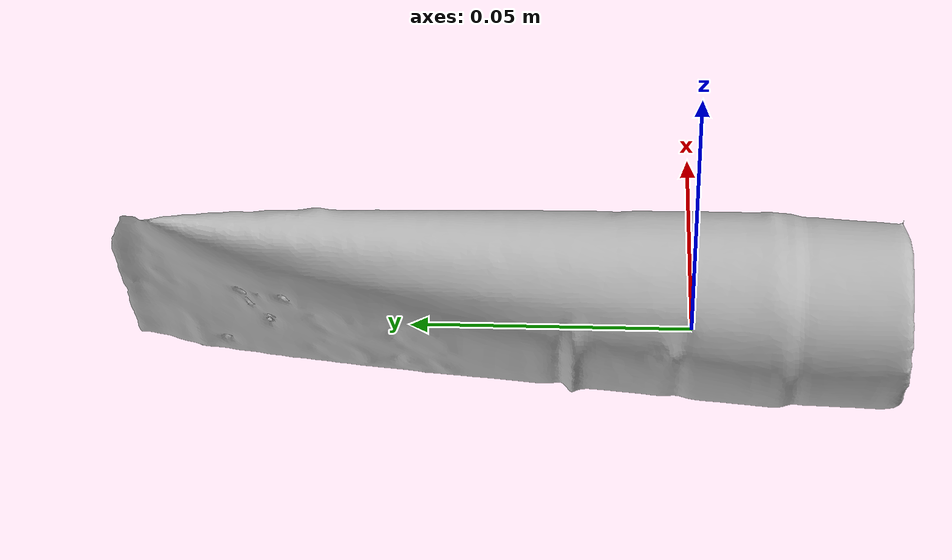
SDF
<?xml version='1.0'?>
<sdf version="1.4">
  <model name="Toothpaste">
    <static>false</static>
    <link name="link">
      <inertial>
        <pose>0.0051177509927899595 0.0222294222349875 0.002167716314041517 -1.5894677801740704 0.47358804533439874 3.1039124271980993</pose>
        <mass>0.01118271268191318</mass>
        <inertia>
          <ixx>1.5400925778607903e-05</ixx>
          <ixy>-2.355325120044725e-22</ixy>
          <ixz>-2.345323145333361e-22</ixz>
          <iyy>1.4733697355173416e-05</iyy>
          <iyz>-4.5519466178063235e-23</iyz>
          <izz>1.8134493825647758e-06</izz>
        </inertia>
      </inertial>
      <collision name="collision">
        <geometry>
          <mesh>
            <!-- Use a downsampled mesh for collisions -->
            <uri>model:///Toothpaste/Toothpaste_250_collision.obj</uri>
	        </mesh>
        </geometry>
        <surface>
      </surface>
      </collision>
      <visual name="visual">
        <geometry>
          <mesh>
            <uri>model:///Toothpaste/Toothpaste_25k_tex.obj</uri>
	        </mesh>
        </geometry>
        <material>
          <script>
            <uri>model:///Toothpaste/Toothpaste.material</uri>
            <name>Toothpaste</name>
          </script>
        </material>
      </visual>
    </link>
  </model>
</sdf>
